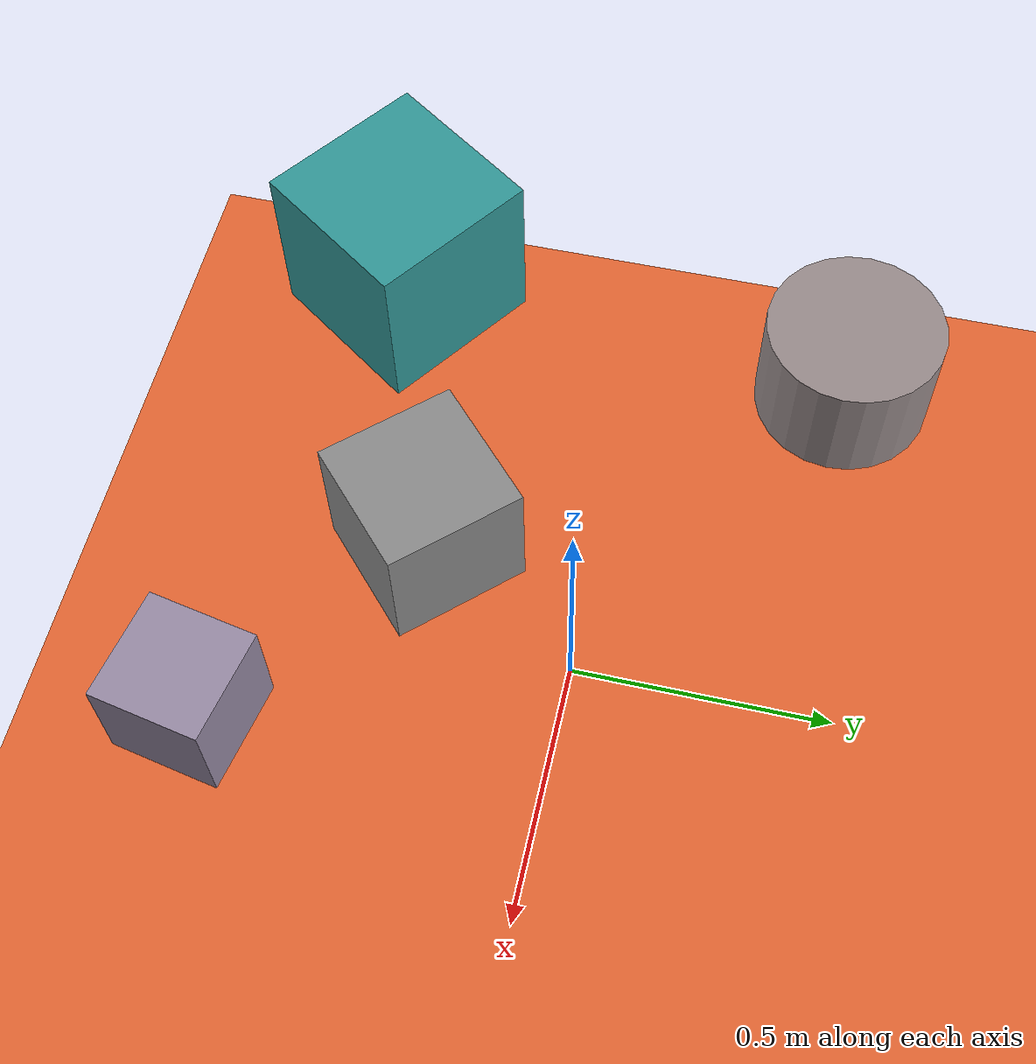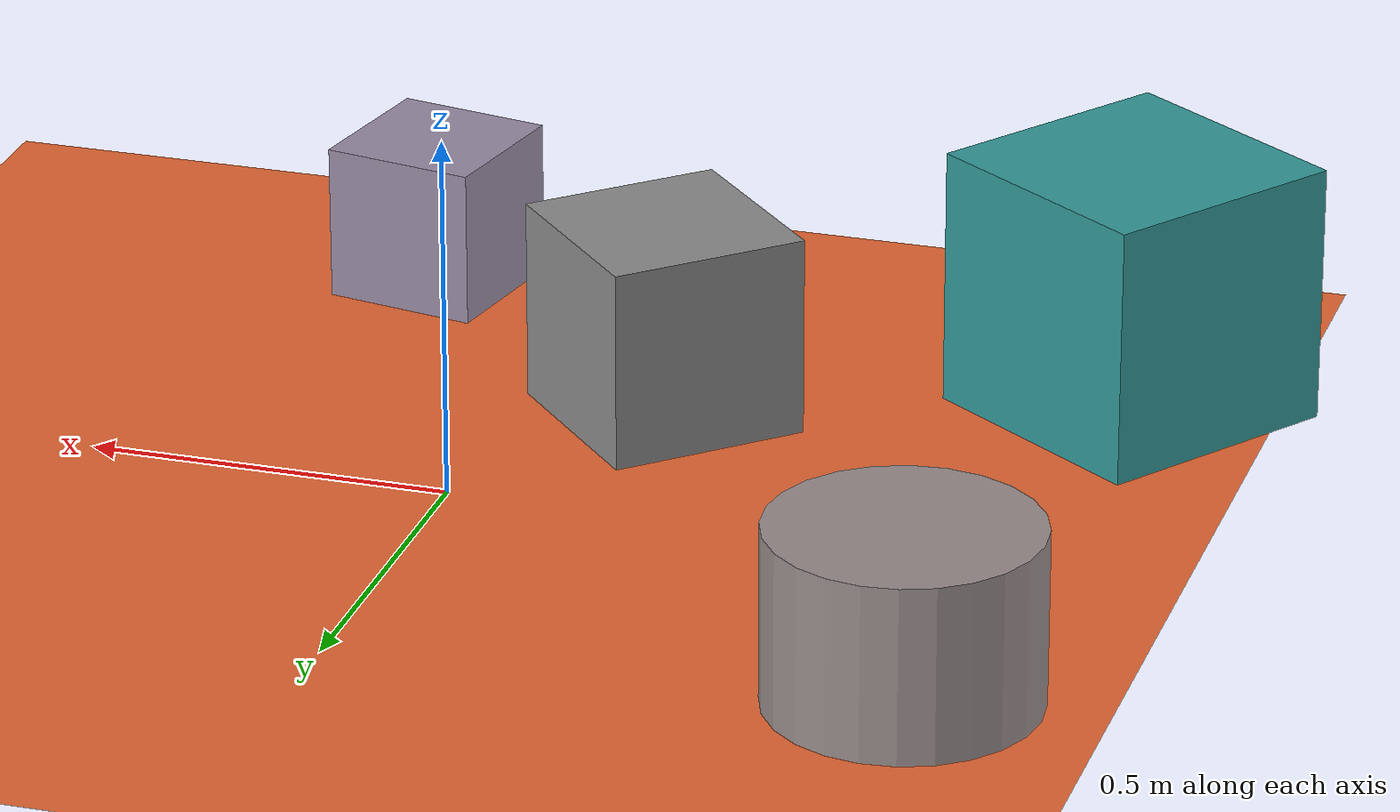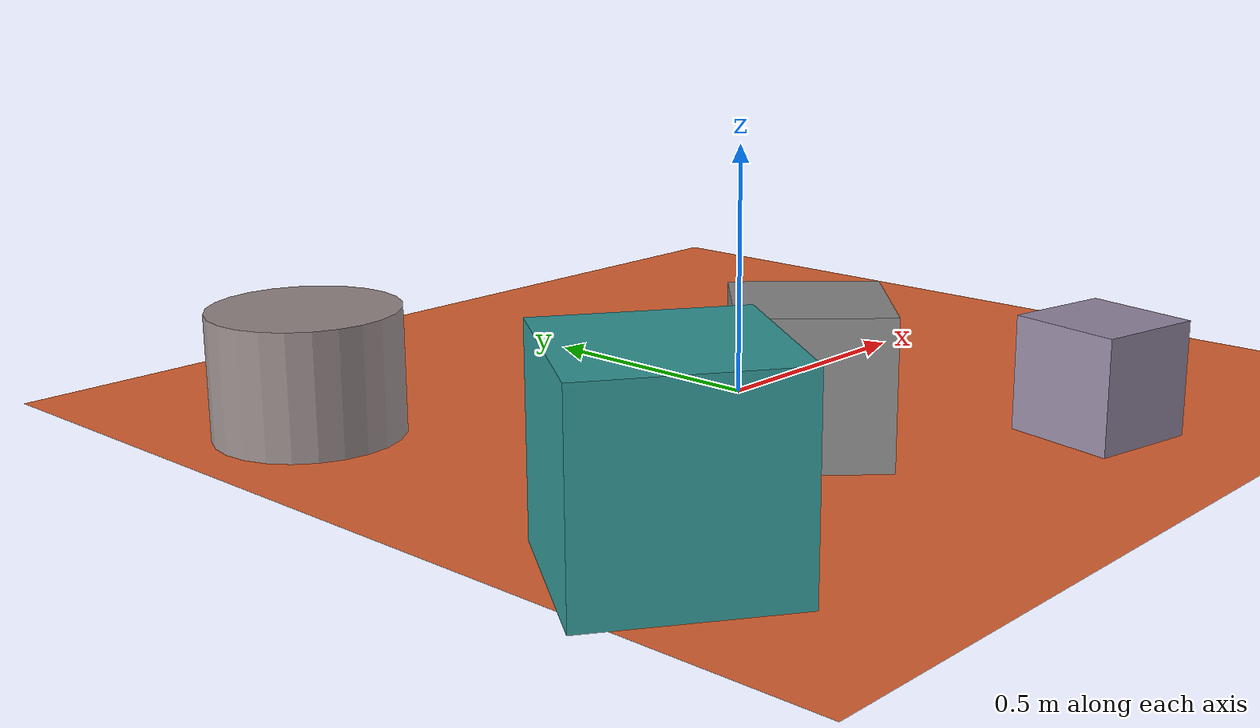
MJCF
<mujoco>
   <asset>
<texture type="skybox" builtin="gradient" rgb1="0.8 0.6 0.4" rgb2="0.2 0.2 0.3" width="256" height="256"/>
<texture name="checker_0" builtin="checker" rgb1="0.6 0.3 0.8" rgb2="0.5 0.8 0.3" width="200" height="200"/>
<texture name="checker_1" builtin="checker" rgb1="1.0 0.1 0.4" rgb2="0.2 1.0 0.9" width="200" height="200"/>
<texture name="flat_2" builtin="flat" rgb1="0.2 0.6 0.6" rgb2="0.2 0.6 0.6"  width="200" height="200"/>
<texture name="checker_3" builtin="checker" rgb1="0.9 0.1 0.7" rgb2="0.3 1.0 0.4" width="200" height="200"/><material name="checker_0_mat" reflectance="0" texrepeat="5 5" texture="checker_0" texuniform="false" />
<material name="checker_1_mat" reflectance="0" texrepeat="3 3" texture="checker_1" texuniform="false" />
<material name="flat_2_mat" reflectance="0" texture="flat_2" texuniform="true"/>
<material name="checker_3_mat" reflectance="0" texrepeat="2 2" texture="checker_3" texuniform="false" />
   </asset>

   <worldbody>
      <light diffuse=".9 .9 .9" pos="0 0 3" dir="0 0 -1"/>
     <geom type="plane" size="1 1 0.1" rgba="0.9 0.4 0.2 1"/>
<geom type="box" pos="-0.2 -0.33 0.14" size="0.14 0.14 0.14" material="checker_0_mat" euler="0 0 43" />
<geom type="box" pos="0.24 -0.67 0.11" size="0.11 0.11 0.11" material="checker_1_mat" euler="0 0 79" />
<geom type="box" pos="-0.8 -0.53 0.18" size="0.18 0.18 0.18" material="flat_2_mat" euler="0 0 55" />
<geom type="cylinder" pos="-0.74 0.42 0.12" size="0.18 0.12 0.12" material="checker_3_mat" euler="0 0 58" /><camera euler="60 0 180" fovy="60" name="camera1" pos="-0.2 -1.5 1"></camera>   </worldbody>
</mujoco>
